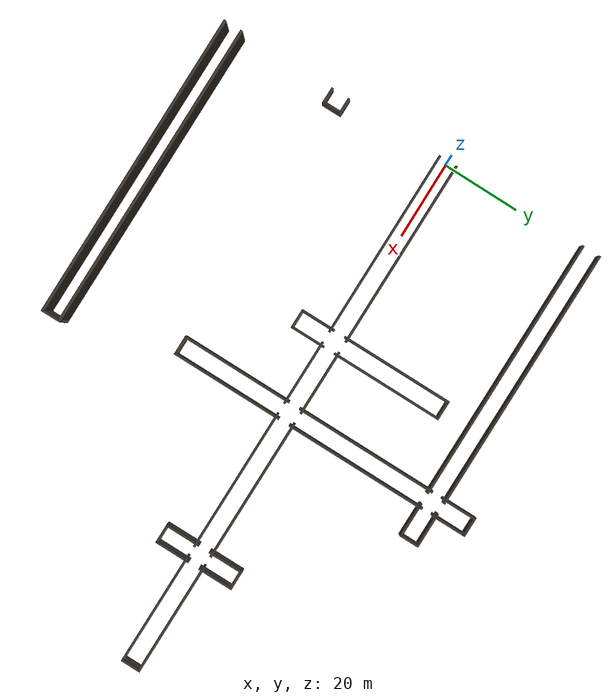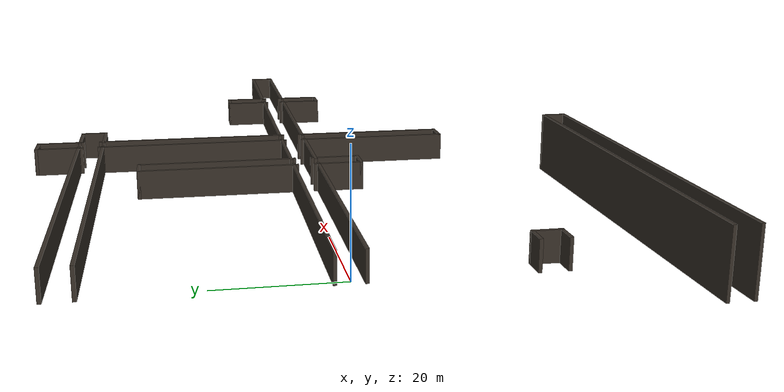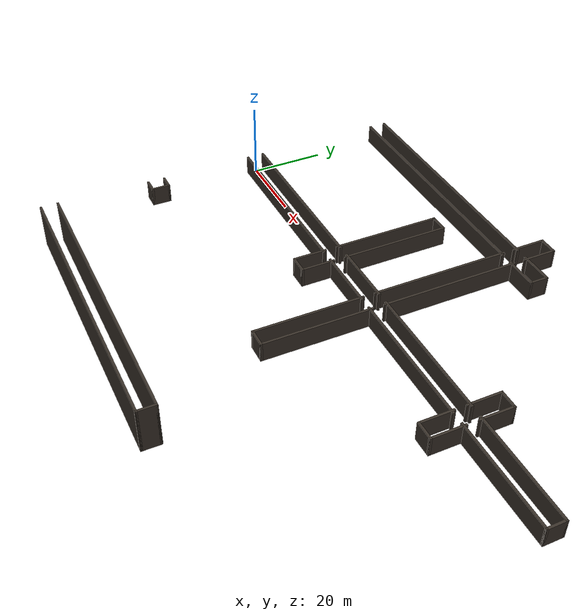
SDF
<sdf version="1.9">
 <world name="living_map">
  <model name="galleries_walls">
   <static>true</static>
   <link name="w1">
    <pose>40.000 -62.300 -0.75 0 0 0</pose>
    <collision name="c"><geometry><box><size>81.200 0.600 12.5</size></box></geometry></collision>
    <visual name="v">
     <geometry><box><size>81.200 0.600 12.5</size></box></geometry>
     <material>
      <ambient>0.22 0.19 0.16 1</ambient>
      <diffuse>0.22 0.19 0.16 1</diffuse>
      <specular>0.05 0.05 0.05 1</specular>
      <pbr>
       <metal>
        <albedo_map>model://lm_rock/materials/textures/rock.png</albedo_map>
        <roughness>0.95</roughness>
        <metalness>0.0</metalness>
       </metal>
      </pbr>
     </material>
    </visual>
   </link>
   <link name="w2">
    <pose>40.000 -57.700 -0.75 0 0 0</pose>
    <collision name="c"><geometry><box><size>81.200 0.600 12.5</size></box></geometry></collision>
    <visual name="v">
     <geometry><box><size>81.200 0.600 12.5</size></box></geometry>
     <material>
      <ambient>0.22 0.19 0.16 1</ambient>
      <diffuse>0.22 0.19 0.16 1</diffuse>
      <specular>0.05 0.05 0.05 1</specular>
      <pbr>
       <metal>
        <albedo_map>model://lm_rock/materials/textures/rock.png</albedo_map>
        <roughness>0.95</roughness>
        <metalness>0.0</metalness>
       </metal>
      </pbr>
     </material>
    </visual>
   </link>
   <link name="w3">
    <pose>1.500 -32.300 2.40 0 0 0</pose>
    <collision name="c"><geometry><box><size>4.200 0.600 5.2</size></box></geometry></collision>
    <visual name="v">
     <geometry><box><size>4.200 0.600 5.2</size></box></geometry>
     <material>
      <ambient>0.22 0.19 0.16 1</ambient>
      <diffuse>0.22 0.19 0.16 1</diffuse>
      <specular>0.05 0.05 0.05 1</specular>
      <pbr>
       <metal>
        <albedo_map>model://lm_rock/materials/textures/rock.png</albedo_map>
        <roughness>0.95</roughness>
        <metalness>0.0</metalness>
       </metal>
      </pbr>
     </material>
    </visual>
   </link>
   <link name="w4">
    <pose>70.000 -30.300 2.40 0 0 0</pose>
    <collision name="c"><geometry><box><size>5.200 0.600 5.2</size></box></geometry></collision>
    <visual name="v">
     <geometry><box><size>5.200 0.600 5.2</size></box></geometry>
     <material>
      <ambient>0.22 0.19 0.16 1</ambient>
      <diffuse>0.22 0.19 0.16 1</diffuse>
      <specular>0.05 0.05 0.05 1</specular>
      <pbr>
       <metal>
        <albedo_map>model://lm_rock/materials/textures/rock.png</albedo_map>
        <roughness>0.95</roughness>
        <metalness>0.0</metalness>
       </metal>
      </pbr>
     </material>
    </visual>
   </link>
   <link name="w5">
    <pose>1.500 -27.700 2.40 0 0 0</pose>
    <collision name="c"><geometry><box><size>4.200 0.600 5.2</size></box></geometry></collision>
    <visual name="v">
     <geometry><box><size>4.200 0.600 5.2</size></box></geometry>
     <material>
      <ambient>0.22 0.19 0.16 1</ambient>
      <diffuse>0.22 0.19 0.16 1</diffuse>
      <specular>0.05 0.05 0.05 1</specular>
      <pbr>
       <metal>
        <albedo_map>model://lm_rock/materials/textures/rock.png</albedo_map>
        <roughness>0.95</roughness>
        <metalness>0.0</metalness>
       </metal>
      </pbr>
     </material>
    </visual>
   </link>
   <link name="w6">
    <pose>50.000 -10.300 2.40 0 0 0</pose>
    <collision name="c"><geometry><box><size>5.200 0.600 5.2</size></box></geometry></collision>
    <visual name="v">
     <geometry><box><size>5.200 0.600 5.2</size></box></geometry>
     <material>
      <ambient>0.22 0.19 0.16 1</ambient>
      <diffuse>0.22 0.19 0.16 1</diffuse>
      <specular>0.05 0.05 0.05 1</specular>
      <pbr>
       <metal>
        <albedo_map>model://lm_rock/materials/textures/rock.png</albedo_map>
        <roughness>0.95</roughness>
        <metalness>0.0</metalness>
       </metal>
      </pbr>
     </material>
    </visual>
   </link>
   <link name="w7">
    <pose>110.000 -10.300 2.40 0 0 0</pose>
    <collision name="c"><geometry><box><size>5.200 0.600 5.2</size></box></geometry></collision>
    <visual name="v">
     <geometry><box><size>5.200 0.600 5.2</size></box></geometry>
     <material>
      <ambient>0.22 0.19 0.16 1</ambient>
      <diffuse>0.22 0.19 0.16 1</diffuse>
      <specular>0.05 0.05 0.05 1</specular>
      <pbr>
       <metal>
        <albedo_map>model://lm_rock/materials/textures/rock.png</albedo_map>
        <roughness>0.95</roughness>
        <metalness>0.0</metalness>
       </metal>
      </pbr>
     </material>
    </visual>
   </link>
   <link name="w8">
    <pose>24.000 -2.300 2.40 0 0 0</pose>
    <collision name="c"><geometry><box><size>49.200 0.600 5.2</size></box></geometry></collision>
    <visual name="v">
     <geometry><box><size>49.200 0.600 5.2</size></box></geometry>
     <material>
      <ambient>0.22 0.19 0.16 1</ambient>
      <diffuse>0.22 0.19 0.16 1</diffuse>
      <specular>0.05 0.05 0.05 1</specular>
      <pbr>
       <metal>
        <albedo_map>model://lm_rock/materials/textures/rock.png</albedo_map>
        <roughness>0.95</roughness>
        <metalness>0.0</metalness>
       </metal>
      </pbr>
     </material>
    </visual>
   </link>
   <link name="w9">
    <pose>60.000 -2.300 2.40 0 0 0</pose>
    <collision name="c"><geometry><box><size>17.200 0.600 5.2</size></box></geometry></collision>
    <visual name="v">
     <geometry><box><size>17.200 0.600 5.2</size></box></geometry>
     <material>
      <ambient>0.22 0.19 0.16 1</ambient>
      <diffuse>0.22 0.19 0.16 1</diffuse>
      <specular>0.05 0.05 0.05 1</specular>
      <pbr>
       <metal>
        <albedo_map>model://lm_rock/materials/textures/rock.png</albedo_map>
        <roughness>0.95</roughness>
        <metalness>0.0</metalness>
       </metal>
      </pbr>
     </material>
    </visual>
   </link>
   <link name="w10">
    <pose>90.000 -2.300 2.40 0 0 0</pose>
    <collision name="c"><geometry><box><size>37.200 0.600 5.2</size></box></geometry></collision>
    <visual name="v">
     <geometry><box><size>37.200 0.600 5.2</size></box></geometry>
     <material>
      <ambient>0.22 0.19 0.16 1</ambient>
      <diffuse>0.22 0.19 0.16 1</diffuse>
      <specular>0.05 0.05 0.05 1</specular>
      <pbr>
       <metal>
        <albedo_map>model://lm_rock/materials/textures/rock.png</albedo_map>
        <roughness>0.95</roughness>
        <metalness>0.0</metalness>
       </metal>
      </pbr>
     </material>
    </visual>
   </link>
   <link name="w11">
    <pose>126.000 -2.300 2.40 0 0 0</pose>
    <collision name="c"><geometry><box><size>29.200 0.600 5.2</size></box></geometry></collision>
    <visual name="v">
     <geometry><box><size>29.200 0.600 5.2</size></box></geometry>
     <material>
      <ambient>0.22 0.19 0.16 1</ambient>
      <diffuse>0.22 0.19 0.16 1</diffuse>
      <specular>0.05 0.05 0.05 1</specular>
      <pbr>
       <metal>
        <albedo_map>model://lm_rock/materials/textures/rock.png</albedo_map>
        <roughness>0.95</roughness>
        <metalness>0.0</metalness>
       </metal>
      </pbr>
     </material>
    </visual>
   </link>
   <link name="w12">
    <pose>24.000 2.300 2.40 0 0 0</pose>
    <collision name="c"><geometry><box><size>49.200 0.600 5.2</size></box></geometry></collision>
    <visual name="v">
     <geometry><box><size>49.200 0.600 5.2</size></box></geometry>
     <material>
      <ambient>0.22 0.19 0.16 1</ambient>
      <diffuse>0.22 0.19 0.16 1</diffuse>
      <specular>0.05 0.05 0.05 1</specular>
      <pbr>
       <metal>
        <albedo_map>model://lm_rock/materials/textures/rock.png</albedo_map>
        <roughness>0.95</roughness>
        <metalness>0.0</metalness>
       </metal>
      </pbr>
     </material>
    </visual>
   </link>
   <link name="w13">
    <pose>60.000 2.300 2.40 0 0 0</pose>
    <collision name="c"><geometry><box><size>17.200 0.600 5.2</size></box></geometry></collision>
    <visual name="v">
     <geometry><box><size>17.200 0.600 5.2</size></box></geometry>
     <material>
      <ambient>0.22 0.19 0.16 1</ambient>
      <diffuse>0.22 0.19 0.16 1</diffuse>
      <specular>0.05 0.05 0.05 1</specular>
      <pbr>
       <metal>
        <albedo_map>model://lm_rock/materials/textures/rock.png</albedo_map>
        <roughness>0.95</roughness>
        <metalness>0.0</metalness>
       </metal>
      </pbr>
     </material>
    </visual>
   </link>
   <link name="w14">
    <pose>90.000 2.300 2.40 0 0 0</pose>
    <collision name="c"><geometry><box><size>37.200 0.600 5.2</size></box></geometry></collision>
    <visual name="v">
     <geometry><box><size>37.200 0.600 5.2</size></box></geometry>
     <material>
      <ambient>0.22 0.19 0.16 1</ambient>
      <diffuse>0.22 0.19 0.16 1</diffuse>
      <specular>0.05 0.05 0.05 1</specular>
      <pbr>
       <metal>
        <albedo_map>model://lm_rock/materials/textures/rock.png</albedo_map>
        <roughness>0.95</roughness>
        <metalness>0.0</metalness>
       </metal>
      </pbr>
     </material>
    </visual>
   </link>
   <link name="w15">
    <pose>126.000 2.300 2.40 0 0 0</pose>
    <collision name="c"><geometry><box><size>29.200 0.600 5.2</size></box></geometry></collision>
    <visual name="v">
     <geometry><box><size>29.200 0.600 5.2</size></box></geometry>
     <material>
      <ambient>0.22 0.19 0.16 1</ambient>
      <diffuse>0.22 0.19 0.16 1</diffuse>
      <specular>0.05 0.05 0.05 1</specular>
      <pbr>
       <metal>
        <albedo_map>model://lm_rock/materials/textures/rock.png</albedo_map>
        <roughness>0.95</roughness>
        <metalness>0.0</metalness>
       </metal>
      </pbr>
     </material>
    </visual>
   </link>
   <link name="w16">
    <pose>110.000 10.300 2.40 0 0 0</pose>
    <collision name="c"><geometry><box><size>5.200 0.600 5.2</size></box></geometry></collision>
    <visual name="v">
     <geometry><box><size>5.200 0.600 5.2</size></box></geometry>
     <material>
      <ambient>0.22 0.19 0.16 1</ambient>
      <diffuse>0.22 0.19 0.16 1</diffuse>
      <specular>0.05 0.05 0.05 1</specular>
      <pbr>
       <metal>
        <albedo_map>model://lm_rock/materials/textures/rock.png</albedo_map>
        <roughness>0.95</roughness>
        <metalness>0.0</metalness>
       </metal>
      </pbr>
     </material>
    </visual>
   </link>
   <link name="w17">
    <pose>50.000 30.300 2.40 0 0 0</pose>
    <collision name="c"><geometry><box><size>5.200 0.600 5.2</size></box></geometry></collision>
    <visual name="v">
     <geometry><box><size>5.200 0.600 5.2</size></box></geometry>
     <material>
      <ambient>0.22 0.19 0.16 1</ambient>
      <diffuse>0.22 0.19 0.16 1</diffuse>
      <specular>0.05 0.05 0.05 1</specular>
      <pbr>
       <metal>
        <albedo_map>model://lm_rock/materials/textures/rock.png</albedo_map>
        <roughness>0.95</roughness>
        <metalness>0.0</metalness>
       </metal>
      </pbr>
     </material>
    </visual>
   </link>
   <link name="w18">
    <pose>34.000 37.700 2.40 0 0 0</pose>
    <collision name="c"><geometry><box><size>69.200 0.600 5.2</size></box></geometry></collision>
    <visual name="v">
     <geometry><box><size>69.200 0.600 5.2</size></box></geometry>
     <material>
      <ambient>0.22 0.19 0.16 1</ambient>
      <diffuse>0.22 0.19 0.16 1</diffuse>
      <specular>0.05 0.05 0.05 1</specular>
      <pbr>
       <metal>
        <albedo_map>model://lm_rock/materials/textures/rock.png</albedo_map>
        <roughness>0.95</roughness>
        <metalness>0.0</metalness>
       </metal>
      </pbr>
     </material>
    </visual>
   </link>
   <link name="w19">
    <pose>76.000 37.700 2.40 0 0 0</pose>
    <collision name="c"><geometry><box><size>9.200 0.600 5.2</size></box></geometry></collision>
    <visual name="v">
     <geometry><box><size>9.200 0.600 5.2</size></box></geometry>
     <material>
      <ambient>0.22 0.19 0.16 1</ambient>
      <diffuse>0.22 0.19 0.16 1</diffuse>
      <specular>0.05 0.05 0.05 1</specular>
      <pbr>
       <metal>
        <albedo_map>model://lm_rock/materials/textures/rock.png</albedo_map>
        <roughness>0.95</roughness>
        <metalness>0.0</metalness>
       </metal>
      </pbr>
     </material>
    </visual>
   </link>
   <link name="w20">
    <pose>34.000 42.300 2.40 0 0 0</pose>
    <collision name="c"><geometry><box><size>69.200 0.600 5.2</size></box></geometry></collision>
    <visual name="v">
     <geometry><box><size>69.200 0.600 5.2</size></box></geometry>
     <material>
      <ambient>0.22 0.19 0.16 1</ambient>
      <diffuse>0.22 0.19 0.16 1</diffuse>
      <specular>0.05 0.05 0.05 1</specular>
      <pbr>
       <metal>
        <albedo_map>model://lm_rock/materials/textures/rock.png</albedo_map>
        <roughness>0.95</roughness>
        <metalness>0.0</metalness>
       </metal>
      </pbr>
     </material>
    </visual>
   </link>
   <link name="w21">
    <pose>76.000 42.300 2.40 0 0 0</pose>
    <collision name="c"><geometry><box><size>9.200 0.600 5.2</size></box></geometry></collision>
    <visual name="v">
     <geometry><box><size>9.200 0.600 5.2</size></box></geometry>
     <material>
      <ambient>0.22 0.19 0.16 1</ambient>
      <diffuse>0.22 0.19 0.16 1</diffuse>
      <specular>0.05 0.05 0.05 1</specular>
      <pbr>
       <metal>
        <albedo_map>model://lm_rock/materials/textures/rock.png</albedo_map>
        <roughness>0.95</roughness>
        <metalness>0.0</metalness>
       </metal>
      </pbr>
     </material>
    </visual>
   </link>
   <link name="w22">
    <pose>70.000 50.300 2.40 0 0 0</pose>
    <collision name="c"><geometry><box><size>5.200 0.600 5.2</size></box></geometry></collision>
    <visual name="v">
     <geometry><box><size>5.200 0.600 5.2</size></box></geometry>
     <material>
      <ambient>0.22 0.19 0.16 1</ambient>
      <diffuse>0.22 0.19 0.16 1</diffuse>
      <specular>0.05 0.05 0.05 1</specular>
      <pbr>
       <metal>
        <albedo_map>model://lm_rock/materials/textures/rock.png</albedo_map>
        <roughness>0.95</roughness>
        <metalness>0.0</metalness>
       </metal>
      </pbr>
     </material>
    </visual>
   </link>
   <link name="w23">
    <pose>3.300 -30.000 2.40 0 0 0</pose>
    <collision name="c"><geometry><box><size>0.600 5.200 5.2</size></box></geometry></collision>
    <visual name="v">
     <geometry><box><size>0.600 5.200 5.2</size></box></geometry>
     <material>
      <ambient>0.22 0.19 0.16 1</ambient>
      <diffuse>0.22 0.19 0.16 1</diffuse>
      <specular>0.05 0.05 0.05 1</specular>
      <pbr>
       <metal>
        <albedo_map>model://lm_rock/materials/textures/rock.png</albedo_map>
        <roughness>0.95</roughness>
        <metalness>0.0</metalness>
       </metal>
      </pbr>
     </material>
    </visual>
   </link>
   <link name="w24">
    <pose>47.700 -6.000 2.40 0 0 0</pose>
    <collision name="c"><geometry><box><size>0.600 9.200 5.2</size></box></geometry></collision>
    <visual name="v">
     <geometry><box><size>0.600 9.200 5.2</size></box></geometry>
     <material>
      <ambient>0.22 0.19 0.16 1</ambient>
      <diffuse>0.22 0.19 0.16 1</diffuse>
      <specular>0.05 0.05 0.05 1</specular>
      <pbr>
       <metal>
        <albedo_map>model://lm_rock/materials/textures/rock.png</albedo_map>
        <roughness>0.95</roughness>
        <metalness>0.0</metalness>
       </metal>
      </pbr>
     </material>
    </visual>
   </link>
   <link name="w25">
    <pose>47.700 16.000 2.40 0 0 0</pose>
    <collision name="c"><geometry><box><size>0.600 29.200 5.2</size></box></geometry></collision>
    <visual name="v">
     <geometry><box><size>0.600 29.200 5.2</size></box></geometry>
     <material>
      <ambient>0.22 0.19 0.16 1</ambient>
      <diffuse>0.22 0.19 0.16 1</diffuse>
      <specular>0.05 0.05 0.05 1</specular>
      <pbr>
       <metal>
        <albedo_map>model://lm_rock/materials/textures/rock.png</albedo_map>
        <roughness>0.95</roughness>
        <metalness>0.0</metalness>
       </metal>
      </pbr>
     </material>
    </visual>
   </link>
   <link name="w26">
    <pose>52.300 -6.000 2.40 0 0 0</pose>
    <collision name="c"><geometry><box><size>0.600 9.200 5.2</size></box></geometry></collision>
    <visual name="v">
     <geometry><box><size>0.600 9.200 5.2</size></box></geometry>
     <material>
      <ambient>0.22 0.19 0.16 1</ambient>
      <diffuse>0.22 0.19 0.16 1</diffuse>
      <specular>0.05 0.05 0.05 1</specular>
      <pbr>
       <metal>
        <albedo_map>model://lm_rock/materials/textures/rock.png</albedo_map>
        <roughness>0.95</roughness>
        <metalness>0.0</metalness>
       </metal>
      </pbr>
     </material>
    </visual>
   </link>
   <link name="w27">
    <pose>52.300 16.000 2.40 0 0 0</pose>
    <collision name="c"><geometry><box><size>0.600 29.200 5.2</size></box></geometry></collision>
    <visual name="v">
     <geometry><box><size>0.600 29.200 5.2</size></box></geometry>
     <material>
      <ambient>0.22 0.19 0.16 1</ambient>
      <diffuse>0.22 0.19 0.16 1</diffuse>
      <specular>0.05 0.05 0.05 1</specular>
      <pbr>
       <metal>
        <albedo_map>model://lm_rock/materials/textures/rock.png</albedo_map>
        <roughness>0.95</roughness>
        <metalness>0.0</metalness>
       </metal>
      </pbr>
     </material>
    </visual>
   </link>
   <link name="w28">
    <pose>67.700 -16.000 2.40 0 0 0</pose>
    <collision name="c"><geometry><box><size>0.600 29.200 5.2</size></box></geometry></collision>
    <visual name="v">
     <geometry><box><size>0.600 29.200 5.2</size></box></geometry>
     <material>
      <ambient>0.22 0.19 0.16 1</ambient>
      <diffuse>0.22 0.19 0.16 1</diffuse>
      <specular>0.05 0.05 0.05 1</specular>
      <pbr>
       <metal>
        <albedo_map>model://lm_rock/materials/textures/rock.png</albedo_map>
        <roughness>0.95</roughness>
        <metalness>0.0</metalness>
       </metal>
      </pbr>
     </material>
    </visual>
   </link>
   <link name="w29">
    <pose>67.700 20.000 2.40 0 0 0</pose>
    <collision name="c"><geometry><box><size>0.600 37.200 5.2</size></box></geometry></collision>
    <visual name="v">
     <geometry><box><size>0.600 37.200 5.2</size></box></geometry>
     <material>
      <ambient>0.22 0.19 0.16 1</ambient>
      <diffuse>0.22 0.19 0.16 1</diffuse>
      <specular>0.05 0.05 0.05 1</specular>
      <pbr>
       <metal>
        <albedo_map>model://lm_rock/materials/textures/rock.png</albedo_map>
        <roughness>0.95</roughness>
        <metalness>0.0</metalness>
       </metal>
      </pbr>
     </material>
    </visual>
   </link>
   <link name="w30">
    <pose>67.700 46.000 2.40 0 0 0</pose>
    <collision name="c"><geometry><box><size>0.600 9.200 5.2</size></box></geometry></collision>
    <visual name="v">
     <geometry><box><size>0.600 9.200 5.2</size></box></geometry>
     <material>
      <ambient>0.22 0.19 0.16 1</ambient>
      <diffuse>0.22 0.19 0.16 1</diffuse>
      <specular>0.05 0.05 0.05 1</specular>
      <pbr>
       <metal>
        <albedo_map>model://lm_rock/materials/textures/rock.png</albedo_map>
        <roughness>0.95</roughness>
        <metalness>0.0</metalness>
       </metal>
      </pbr>
     </material>
    </visual>
   </link>
   <link name="w31">
    <pose>72.300 -16.000 2.40 0 0 0</pose>
    <collision name="c"><geometry><box><size>0.600 29.200 5.2</size></box></geometry></collision>
    <visual name="v">
     <geometry><box><size>0.600 29.200 5.2</size></box></geometry>
     <material>
      <ambient>0.22 0.19 0.16 1</ambient>
      <diffuse>0.22 0.19 0.16 1</diffuse>
      <specular>0.05 0.05 0.05 1</specular>
      <pbr>
       <metal>
        <albedo_map>model://lm_rock/materials/textures/rock.png</albedo_map>
        <roughness>0.95</roughness>
        <metalness>0.0</metalness>
       </metal>
      </pbr>
     </material>
    </visual>
   </link>
   <link name="w32">
    <pose>72.300 20.000 2.40 0 0 0</pose>
    <collision name="c"><geometry><box><size>0.600 37.200 5.2</size></box></geometry></collision>
    <visual name="v">
     <geometry><box><size>0.600 37.200 5.2</size></box></geometry>
     <material>
      <ambient>0.22 0.19 0.16 1</ambient>
      <diffuse>0.22 0.19 0.16 1</diffuse>
      <specular>0.05 0.05 0.05 1</specular>
      <pbr>
       <metal>
        <albedo_map>model://lm_rock/materials/textures/rock.png</albedo_map>
        <roughness>0.95</roughness>
        <metalness>0.0</metalness>
       </metal>
      </pbr>
     </material>
    </visual>
   </link>
   <link name="w33">
    <pose>72.300 46.000 2.40 0 0 0</pose>
    <collision name="c"><geometry><box><size>0.600 9.200 5.2</size></box></geometry></collision>
    <visual name="v">
     <geometry><box><size>0.600 9.200 5.2</size></box></geometry>
     <material>
      <ambient>0.22 0.19 0.16 1</ambient>
      <diffuse>0.22 0.19 0.16 1</diffuse>
      <specular>0.05 0.05 0.05 1</specular>
      <pbr>
       <metal>
        <albedo_map>model://lm_rock/materials/textures/rock.png</albedo_map>
        <roughness>0.95</roughness>
        <metalness>0.0</metalness>
       </metal>
      </pbr>
     </material>
    </visual>
   </link>
   <link name="w34">
    <pose>80.300 -60.000 -0.75 0 0 0</pose>
    <collision name="c"><geometry><box><size>0.600 5.200 12.5</size></box></geometry></collision>
    <visual name="v">
     <geometry><box><size>0.600 5.200 12.5</size></box></geometry>
     <material>
      <ambient>0.22 0.19 0.16 1</ambient>
      <diffuse>0.22 0.19 0.16 1</diffuse>
      <specular>0.05 0.05 0.05 1</specular>
      <pbr>
       <metal>
        <albedo_map>model://lm_rock/materials/textures/rock.png</albedo_map>
        <roughness>0.95</roughness>
        <metalness>0.0</metalness>
       </metal>
      </pbr>
     </material>
    </visual>
   </link>
   <link name="w35">
    <pose>80.300 40.000 2.40 0 0 0</pose>
    <collision name="c"><geometry><box><size>0.600 5.200 5.2</size></box></geometry></collision>
    <visual name="v">
     <geometry><box><size>0.600 5.200 5.2</size></box></geometry>
     <material>
      <ambient>0.22 0.19 0.16 1</ambient>
      <diffuse>0.22 0.19 0.16 1</diffuse>
      <specular>0.05 0.05 0.05 1</specular>
      <pbr>
       <metal>
        <albedo_map>model://lm_rock/materials/textures/rock.png</albedo_map>
        <roughness>0.95</roughness>
        <metalness>0.0</metalness>
       </metal>
      </pbr>
     </material>
    </visual>
   </link>
   <link name="w36">
    <pose>107.700 -6.000 2.40 0 0 0</pose>
    <collision name="c"><geometry><box><size>0.600 9.200 5.2</size></box></geometry></collision>
    <visual name="v">
     <geometry><box><size>0.600 9.200 5.2</size></box></geometry>
     <material>
      <ambient>0.22 0.19 0.16 1</ambient>
      <diffuse>0.22 0.19 0.16 1</diffuse>
      <specular>0.05 0.05 0.05 1</specular>
      <pbr>
       <metal>
        <albedo_map>model://lm_rock/materials/textures/rock.png</albedo_map>
        <roughness>0.95</roughness>
        <metalness>0.0</metalness>
       </metal>
      </pbr>
     </material>
    </visual>
   </link>
   <link name="w37">
    <pose>107.700 6.000 2.40 0 0 0</pose>
    <collision name="c"><geometry><box><size>0.600 9.200 5.2</size></box></geometry></collision>
    <visual name="v">
     <geometry><box><size>0.600 9.200 5.2</size></box></geometry>
     <material>
      <ambient>0.22 0.19 0.16 1</ambient>
      <diffuse>0.22 0.19 0.16 1</diffuse>
      <specular>0.05 0.05 0.05 1</specular>
      <pbr>
       <metal>
        <albedo_map>model://lm_rock/materials/textures/rock.png</albedo_map>
        <roughness>0.95</roughness>
        <metalness>0.0</metalness>
       </metal>
      </pbr>
     </material>
    </visual>
   </link>
   <link name="w38">
    <pose>112.300 -6.000 2.40 0 0 0</pose>
    <collision name="c"><geometry><box><size>0.600 9.200 5.2</size></box></geometry></collision>
    <visual name="v">
     <geometry><box><size>0.600 9.200 5.2</size></box></geometry>
     <material>
      <ambient>0.22 0.19 0.16 1</ambient>
      <diffuse>0.22 0.19 0.16 1</diffuse>
      <specular>0.05 0.05 0.05 1</specular>
      <pbr>
       <metal>
        <albedo_map>model://lm_rock/materials/textures/rock.png</albedo_map>
        <roughness>0.95</roughness>
        <metalness>0.0</metalness>
       </metal>
      </pbr>
     </material>
    </visual>
   </link>
   <link name="w39">
    <pose>112.300 6.000 2.40 0 0 0</pose>
    <collision name="c"><geometry><box><size>0.600 9.200 5.2</size></box></geometry></collision>
    <visual name="v">
     <geometry><box><size>0.600 9.200 5.2</size></box></geometry>
     <material>
      <ambient>0.22 0.19 0.16 1</ambient>
      <diffuse>0.22 0.19 0.16 1</diffuse>
      <specular>0.05 0.05 0.05 1</specular>
      <pbr>
       <metal>
        <albedo_map>model://lm_rock/materials/textures/rock.png</albedo_map>
        <roughness>0.95</roughness>
        <metalness>0.0</metalness>
       </metal>
      </pbr>
     </material>
    </visual>
   </link>
   <link name="w40">
    <pose>140.300 0.000 2.40 0 0 0</pose>
    <collision name="c"><geometry><box><size>0.600 5.200 5.2</size></box></geometry></collision>
    <visual name="v">
     <geometry><box><size>0.600 5.200 5.2</size></box></geometry>
     <material>
      <ambient>0.22 0.19 0.16 1</ambient>
      <diffuse>0.22 0.19 0.16 1</diffuse>
      <specular>0.05 0.05 0.05 1</specular>
      <pbr>
       <metal>
        <albedo_map>model://lm_rock/materials/textures/rock.png</albedo_map>
        <roughness>0.95</roughness>
        <metalness>0.0</metalness>
       </metal>
      </pbr>
     </material>
    </visual>
   </link>
  </model>
 </world>
</sdf>
